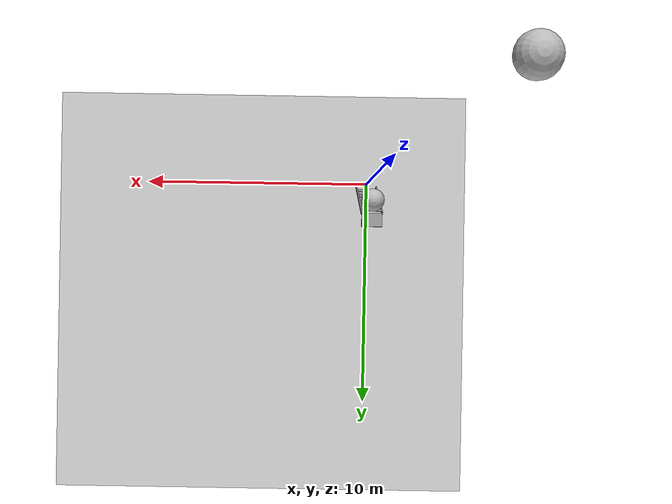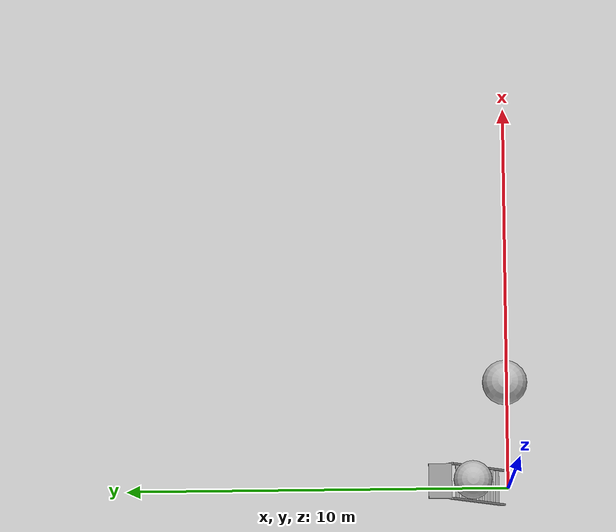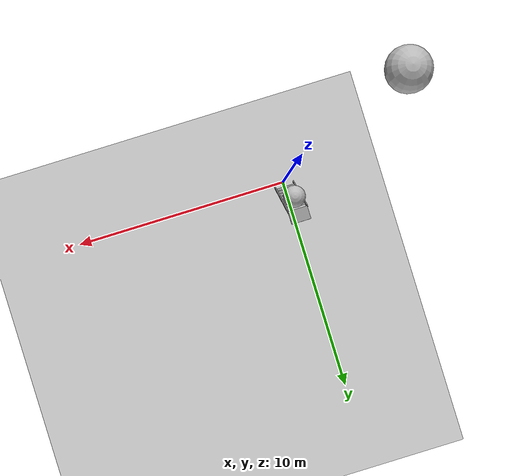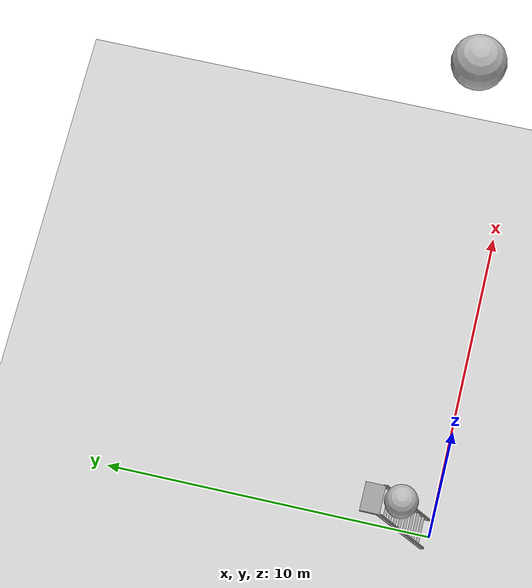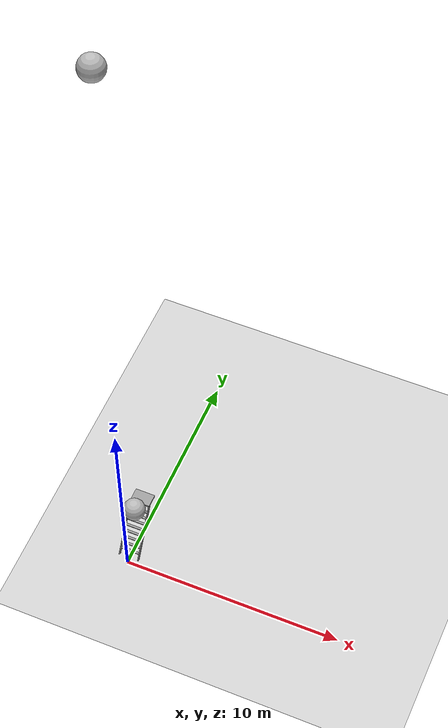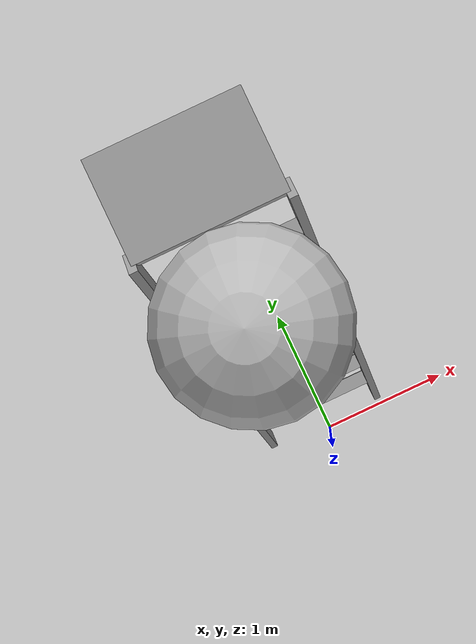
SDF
<sdf version="1.6">
 <world name="default">
  <include><uri>model://ground_plane</uri></include>
  <include><uri>model://ladder_60deg_0rails</uri><pose>0 0.15396 0.266667 0 -0 0</pose></include>
  <model name="unit_sphere">
   <pose>0 1 30 0 0 0</pose>
   <link name="only_link">
    <visual name="visual"><geometry><sphere><radius>0.5</radius></sphere></geometry></visual>
    <collision name="collision"><geometry><sphere><radius>0.5</radius></sphere></geometry></collision>
   </link>
  </model>
  <model name="other_sphere">
   <pose>0 1 3 0 0 0</pose>
   <link name="only_link">
    <visual name="visual"><geometry><sphere><radius>0.5</radius></sphere></geometry></visual>
    <collision name="collision"><geometry><sphere><radius>0.5</radius></sphere></geometry></collision>
   </link>
  </model>
  <light name="post_light" type="spot">
   <attenuation><range>0</range><linear>0.05</linear></attenuation>
   <specular>1 1 1 1</specular>
   <spot><inner_angle>0.5</inner_angle><outer_angle>1</outer_angle><falloff>1</falloff></spot>
   <pose>-0.2 -3 9 0 0 0</pose>
  </light>
  <plugin name="ros_contain_gazebo_plugin" filename="libros_contain_gazebo_plugin.so">
   <enabled>true</enabled>
   <entity>ugv1::base_link ugv2::base_link unit_sphere::only_link other_sphere::only_link</entity>
   <namespace>container_1</namespace>
   <pose>0 -7 0.5 0 0 0</pose>
   <robot_namespace>c</robot_namespace>
   <contain_topic>msg</contain_topic>
   <geometry><box><size>2 2 1</size></box></geometry>
   <rate>1</rate>
  </plugin>
 </world>
</sdf>

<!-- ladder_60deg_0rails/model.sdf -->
<sdf version="1.5">

  <model name= "ladder_60deg_0rails" >
    <static>true</static>
         <link name="step0" >
           <pose>0 0.15396007178390025 0.26666666666666666 0 0 0 </pose>
           <inertial>
             <mass> 9.7548192</mass>
             <inertia>
             <ixx> 0.009571241631672</ixx>
             <iyy> 0.6596303120915761</iyy>
             <izz> 0.666841521540096</izz>
             <ixy>0</ixy>
             <ixz>0</ixz>
             <iyz>0</iyz>
             </inertia>
           </inertial>

           <collision name="collision">
             <geometry>
              <box>
                <size>  0.9  0.1016  0.0381  </size>
              </box>
             </geometry>
           </collision>

          <visual name="visual">
            <geometry>
              <box>
                <size>  0.9  0.1016  0.0381  </size>
              </box>
            </geometry>
            <material>
              <script>
                <uri>file://media/materials/scripts/gazebo.material</uri>
                <name>Gazebo/Grey</name>
              </script>
            </material>
          </visual>
        </link>
         <link name="step1" >
           <pose>0 0.3079201435678005 0.5333333333333333 0 0 0 </pose>
           <inertial>
             <mass> 9.7548192</mass>
             <inertia>
             <ixx> 0.009571241631672</ixx>
             <iyy> 0.6596303120915761</iyy>
             <izz> 0.666841521540096</izz>
             <ixy>0</ixy>
             <ixz>0</ixz>
             <iyz>0</iyz>
             </inertia>
           </inertial>

           <collision name="collision">
             <geometry>
              <box>
                <size>  0.9  0.1016  0.0381  </size>
              </box>
             </geometry>
           </collision>

          <visual name="visual">
            <geometry>
              <box>
                <size>  0.9  0.1016  0.0381  </size>
              </box>
            </geometry>
            <material>
              <script>
                <uri>file://media/materials/scripts/gazebo.material</uri>
                <name>Gazebo/Grey</name>
              </script>
            </material>
          </visual>
        </link>
         <link name="step2" >
           <pose>0 0.46188021535170076 0.8 0 0 0 </pose>
           <inertial>
             <mass> 9.7548192</mass>
             <inertia>
             <ixx> 0.009571241631672</ixx>
             <iyy> 0.6596303120915761</iyy>
             <izz> 0.666841521540096</izz>
             <ixy>0</ixy>
             <ixz>0</ixz>
             <iyz>0</iyz>
             </inertia>
           </inertial>

           <collision name="collision">
             <geometry>
              <box>
                <size>  0.9  0.1016  0.0381  </size>
              </box>
             </geometry>
           </collision>

          <visual name="visual">
            <geometry>
              <box>
                <size>  0.9  0.1016  0.0381  </size>
              </box>
            </geometry>
            <material>
              <script>
                <uri>file://media/materials/scripts/gazebo.material</uri>
                <name>Gazebo/Grey</name>
              </script>
            </material>
          </visual>
        </link>
         <link name="step3" >
           <pose>0 0.615840287135601 1.0666666666666667 0 0 0 </pose>
           <inertial>
             <mass> 9.7548192</mass>
             <inertia>
             <ixx> 0.009571241631672</ixx>
             <iyy> 0.6596303120915761</iyy>
             <izz> 0.666841521540096</izz>
             <ixy>0</ixy>
             <ixz>0</ixz>
             <iyz>0</iyz>
             </inertia>
           </inertial>

           <collision name="collision">
             <geometry>
              <box>
                <size>  0.9  0.1016  0.0381  </size>
              </box>
             </geometry>
           </collision>

          <visual name="visual">
            <geometry>
              <box>
                <size>  0.9  0.1016  0.0381  </size>
              </box>
            </geometry>
            <material>
              <script>
                <uri>file://media/materials/scripts/gazebo.material</uri>
                <name>Gazebo/Grey</name>
              </script>
            </material>
          </visual>
        </link>
         <link name="step4" >
           <pose>0 0.7698003589195013 1.3333333333333333 0 0 0 </pose>
           <inertial>
             <mass> 9.7548192</mass>
             <inertia>
             <ixx> 0.009571241631672</ixx>
             <iyy> 0.6596303120915761</iyy>
             <izz> 0.666841521540096</izz>
             <ixy>0</ixy>
             <ixz>0</ixz>
             <iyz>0</iyz>
             </inertia>
           </inertial>

           <collision name="collision">
             <geometry>
              <box>
                <size>  0.9  0.1016  0.0381  </size>
              </box>
             </geometry>
           </collision>

          <visual name="visual">
            <geometry>
              <box>
                <size>  0.9  0.1016  0.0381  </size>
              </box>
            </geometry>
            <material>
              <script>
                <uri>file://media/materials/scripts/gazebo.material</uri>
                <name>Gazebo/Grey</name>
              </script>
            </material>
          </visual>
        </link>
         <link name="step5" >
           <pose>0 0.9237604307034015 1.6 0 0 0 </pose>
           <inertial>
             <mass> 9.7548192</mass>
             <inertia>
             <ixx> 0.009571241631672</ixx>
             <iyy> 0.6596303120915761</iyy>
             <izz> 0.666841521540096</izz>
             <ixy>0</ixy>
             <ixz>0</ixz>
             <iyz>0</iyz>
             </inertia>
           </inertial>

           <collision name="collision">
             <geometry>
              <box>
                <size>  0.9  0.1016  0.0381  </size>
              </box>
             </geometry>
           </collision>

          <visual name="visual">
            <geometry>
              <box>
                <size>  0.9  0.1016  0.0381  </size>
              </box>
            </geometry>
            <material>
              <script>
                <uri>file://media/materials/scripts/gazebo.material</uri>
                <name>Gazebo/Grey</name>
              </script>
            </material>
          </visual>
        </link>
         <link name="step6" >
           <pose>0 1.0777205024873018 1.8666666666666667 0 0 0 </pose>
           <inertial>
             <mass> 9.7548192</mass>
             <inertia>
             <ixx> 0.009571241631672</ixx>
             <iyy> 0.6596303120915761</iyy>
             <izz> 0.666841521540096</izz>
             <ixy>0</ixy>
             <ixz>0</ixz>
             <iyz>0</iyz>
             </inertia>
           </inertial>

           <collision name="collision">
             <geometry>
              <box>
                <size>  0.9  0.1016  0.0381  </size>
              </box>
             </geometry>
           </collision>

          <visual name="visual">
            <geometry>
              <box>
                <size>  0.9  0.1016  0.0381  </size>
              </box>
            </geometry>
            <material>
              <script>
                <uri>file://media/materials/scripts/gazebo.material</uri>
                <name>Gazebo/Grey</name>
              </script>
            </material>
          </visual>
        </link>
         <link name="step7" >
           <pose>0 1.231680574271202 2.1333333333333333 0 0 0 </pose>
           <inertial>
             <mass> 9.7548192</mass>
             <inertia>
             <ixx> 0.009571241631672</ixx>
             <iyy> 0.6596303120915761</iyy>
             <izz> 0.666841521540096</izz>
             <ixy>0</ixy>
             <ixz>0</ixz>
             <iyz>0</iyz>
             </inertia>
           </inertial>

           <collision name="collision">
             <geometry>
              <box>
                <size>  0.9  0.1016  0.0381  </size>
              </box>
             </geometry>
           </collision>

          <visual name="visual">
            <geometry>
              <box>
                <size>  0.9  0.1016  0.0381  </size>
              </box>
            </geometry>
            <material>
              <script>
                <uri>file://media/materials/scripts/gazebo.material</uri>
                <name>Gazebo/Grey</name>
              </script>
            </material>
          </visual>
        </link>
    <link name="landing">
      <pose>0 1.6856406460551023 2.4 0 0 0 </pose>
        <inertial>
          <mass> 57.607200000000006</mass>
          <inertia>
          <ixx> 1.735184598966</ixx>
          <iyy> 3.8954545989660008</iyy>
          <izz> 5.616702</izz>
          <ixy>0</ixy>
          <ixz>0</ixz>
          <iyz>0</iyz>
          </inertia>
        </inertial>

        <collision name="collision">
          <geometry>
           <box>
             <size> 0.9 0.6 0.1016</size>
           </box>
          </geometry>
        </collision>

        <visual name="visual">
          <geometry>
            <box>
             <size> 0.9 0.6 0.1016</size>
            </box>
          </geometry>
          <material>
            <script>
              <uri>file://media/materials/scripts/gazebo.material</uri>
              <name>Gazebo/Grey</name>
            </script>
          </material>
        </visual>
    </link>

      <link name="left_side_wall" >
        <pose>-0.45 0.6928203230275511 1.2 1.0471975511965976 0 0 </pose>
        <collision name="collision">
          <geometry>
            <box>
              <size> 0.0508  2.851281292110204  0.13 </size>
            </box>
          </geometry>
        </collision>

        <visual name="visual">
          <geometry>
            <box>
              <size> 0.0508  2.851281292110204  0.13 </size>
            </box>
          </geometry>
          <material>
            <script>
              <uri>file://media/materials/scripts/gazebo.material</uri>
              <name>Gazebo/Grey</name>
            </script>
          </material>
        </visual>

      </link>
      <link name="right_side_wall" >
        <pose>0.45 0.6928203230275511 1.2 1.0471975511965976 0 0 </pose>
        <collision name="collision">
          <geometry>
            <box>
              <size> 0.0508  2.851281292110204  0.13 </size>
            </box>
          </geometry>
        </collision>

        <visual name="visual">
          <geometry>
            <box>
              <size> 0.0508  2.851281292110204  0.13 </size>
            </box>
          </geometry>
          <material>
            <script>
              <uri>file://media/materials/scripts/gazebo.material</uri>
              <name>Gazebo/Grey</name>
            </script>
          </material>
        </visual>

      </link>

  </model>
</sdf>
